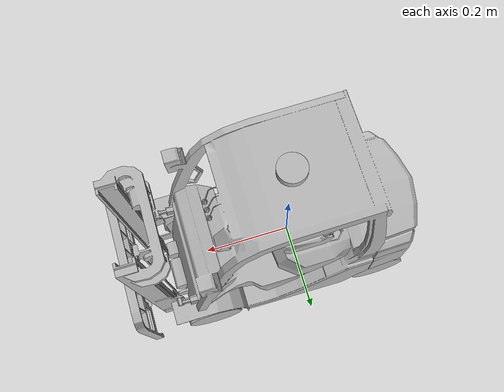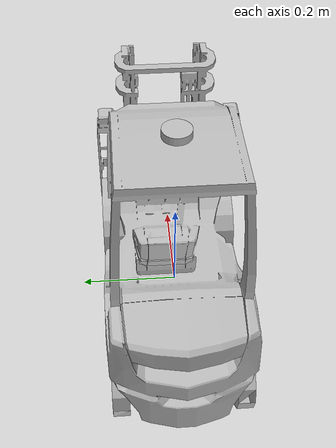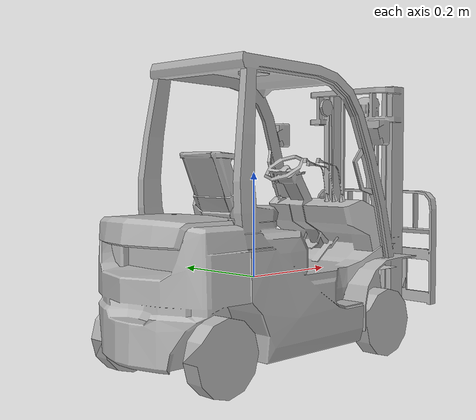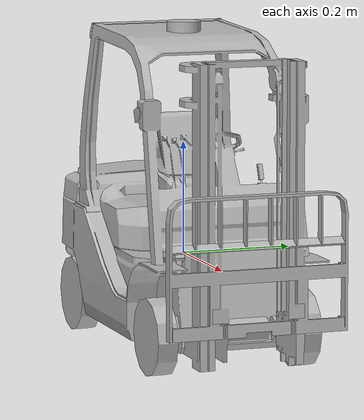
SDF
<sdf version='1.11'>
  <model name='forklift'>
    <link name='base_link'>
      <inertial>
        <pose>-0.099999800000399999 0 -2.9999940000120001e-07 0 0 0</pose>
        <mass>50.000100000000003</mass>
        <inertia>
          <ixx>1.5017689166621671</ixx>
          <ixy>0</ixy>
          <ixz>1.4999970000059999e-06</ixz>
          <iyy>3.0534365833268331</iyy>
          <iyz>0</iyz>
          <izz>2.3017676666646669</izz>
        </inertia>
      </inertial>
      <collision name='base_link_collision'>
        <pose>0.042000000000000003 0 0.14000000000000001 0 0 0</pose>
        <geometry>
          <box>
            <size>0.68000000000000005 0.29999999999999999 0.52000000000000002</size>
          </box>
        </geometry>
      </collision>
      <visual name='base_link_visual'>
        <pose>0 0 0 0 0 0</pose>
        <geometry>
          <mesh>
            <scale>0.0027000000000000001 0.0027000000000000001 0.0027000000000000001</scale>
            <uri>/home/elmeripk/forklift_sim/install/forklift_controller/share/forklift_controller/models/forklift/meshes/body.dae</uri>
          </mesh>
        </geometry>
      </visual>
      <visual name='base_link_fixed_joint_lump__base_footprint_visual_1'>
        <pose>0 0 -0.14999999999999999 0 0 0</pose>
        <geometry>
          <box>
            <size>0.001 0.001 0.001</size>
          </box>
        </geometry>
      </visual>
    </link>
    <joint name='fork_plate_joint' type='revolute'>
      <pose relative_to='base_link'>0.375 0 0.050000000000000003 0 0 0</pose>
      <parent>base_link</parent>
      <child>fork_plate</child>
      <axis>
        <limit>
          <lower>0</lower>
          <upper>0</upper>
        </limit>
        <dynamics>
          <damping>0</damping>
          <friction>0</friction>
          <spring_reference>0</spring_reference>
          <spring_stiffness>0</spring_stiffness>
        </dynamics>
        <xyz>0 0 1</xyz>
      </axis>
      <physics>
        <ode>
          <limit>
            <cfm>0</cfm>
            <erp>0.20000000000000001</erp>
          </limit>
        </ode>
      </physics>
    </joint>
    <link name='fork_plate'>
      <pose relative_to='fork_plate_joint'>0 0 0 0 0 0</pose>
      <inertial>
        <pose>0 0 0 0 0 0</pose>
        <mass>50</mass>
        <inertia>
          <ixx>0.54166666666666663</ixx>
          <ixy>0</ixy>
          <ixz>0</ixz>
          <iyy>0.16708333333333339</iyy>
          <iyz>0</iyz>
          <izz>0.37541666666666662</izz>
        </inertia>
      </inertial>
      <collision name='fork_plate_collision'>
        <pose>0 0 0 0 0 0</pose>
        <geometry>
          <box>
            <size>0.01 0.29999999999999999 0.20000000000000001</size>
          </box>
        </geometry>
        <surface>
          <contact>
            <ode/>
          </contact>
          <friction>
            <ode/>
          </friction>
        </surface>
      </collision>
      <visual name='fork_plate_visual'>
        <pose>0 0 0 0 0 0</pose>
        <geometry>
          <mesh>
            <scale>0.0027000000000000001 0.0027000000000000001 0.0027000000000000001</scale>
            <uri>/home/elmeripk/forklift_sim/install/forklift_controller/share/forklift_controller/models/forklift/meshes/fork_plate.dae</uri>
          </mesh>
        </geometry>
      </visual>
      <sensor name='sensor_contact' type='contact'>
        <contact>
          <collision>fork_plate_fixed_joint_lump__fork_1_collision_1</collision>
          <topic>__default_topic__</topic>
        </contact>
      </sensor>
    </link>
    <joint name='left_wheel_back_joint' type='revolute'>
      <pose relative_to='base_link'>-0.20000000000000001 0.13 -0.10000000000000001 -1.5707963267948959 0 0</pose>
      <parent>base_link</parent>
      <child>left_wheel_back</child>
      <axis>
        <xyz>0 0 1</xyz>
        <limit>
          <lower>-inf</lower>
          <upper>inf</upper>
        </limit>
        <dynamics>
          <spring_reference>0</spring_reference>
          <spring_stiffness>0</spring_stiffness>
        </dynamics>
      </axis>
    </joint>
    <link name='left_wheel_back'>
      <pose relative_to='left_wheel_back_joint'>0 0 0 0 0 0</pose>
      <inertial>
        <pose>0 0 0 0 0 0</pose>
        <mass>5</mass>
        <inertia>
          <ixx>0.0081666666666666658</ixx>
          <ixy>0</ixy>
          <ixz>0</ixz>
          <iyy>0.0081666666666666658</iyy>
          <iyz>0</iyz>
          <izz>0.016</izz>
        </inertia>
      </inertial>
      <collision name='left_wheel_back_collision'>
        <pose>0 0 0 0 0 0</pose>
        <geometry>
          <cylinder>
            <length>0.02</length>
            <radius>0.080000000000000002</radius>
          </cylinder>
        </geometry>
        <surface>
          <contact>
            <ode/>
          </contact>
          <friction>
            <ode/>
          </friction>
        </surface>
      </collision>
      <visual name='left_wheel_back_visual'>
        <pose>0 0 0 -1.5707963267948959 0 0</pose>
        <geometry>
          <mesh>
            <scale>0.002 0.002 0.002</scale>
            <uri>/home/elmeripk/forklift_sim/install/forklift_controller/share/forklift_controller/models/forklift/meshes/front_wheel_right.dae</uri>
          </mesh>
        </geometry>
      </visual>
      <friction>
        <ode>
          <mu>1.01</mu>
          <mu2>1.01</mu2>
          <fdir1>0 0 1</fdir1>
          <slip1>0</slip1>
          <slip2>0</slip2>
        </ode>
      </friction>
      <bounce>
        <restitution_coefficient>0.0</restitution_coefficient>
        <threshold>100000.0</threshold>
      </bounce>
      <contact>
        <ode>
          <soft_cfm>0.0</soft_cfm>
          <soft_erp>0.2</soft_erp>
          <kp>100000.0</kp>
          <kd>1.0</kd>
          <max_vel>100.0</max_vel>
          <min_depth>0.001</min_depth>
        </ode>
      </contact>
    </link>
    <joint name='left_wheel_joint' type='revolute'>
      <pose relative_to='base_link'>0.23000000000000001 0.13 -0.10000000000000001 -1.5707963267948959 0 0</pose>
      <parent>base_link</parent>
      <child>left_wheel</child>
      <axis>
        <xyz>0 0 1</xyz>
        <limit>
          <lower>-inf</lower>
          <upper>inf</upper>
        </limit>
        <dynamics>
          <spring_reference>0</spring_reference>
          <spring_stiffness>0</spring_stiffness>
        </dynamics>
      </axis>
    </joint>
    <link name='left_wheel'>
      <pose relative_to='left_wheel_joint'>0 0 0 0 0 0</pose>
      <inertial>
        <pose>0 0 0 0 0 0</pose>
        <mass>5</mass>
        <inertia>
          <ixx>0.0081666666666666658</ixx>
          <ixy>0</ixy>
          <ixz>0</ixz>
          <iyy>0.0081666666666666658</iyy>
          <iyz>0</iyz>
          <izz>0.016</izz>
        </inertia>
      </inertial>
      <collision name='left_wheel_collision'>
        <pose>0 0 0 0 0 0</pose>
        <geometry>
          <cylinder>
            <length>0.02</length>
            <radius>0.080000000000000002</radius>
          </cylinder>
        </geometry>
        <surface>
          <contact>
            <ode/>
          </contact>
          <friction>
            <ode/>
          </friction>
        </surface>
      </collision>
      <visual name='left_wheel_visual'>
        <pose>0 0 0 -1.5707963267948959 0 0</pose>
        <geometry>
          <mesh>
            <scale>0.002 0.002 0.002</scale>
            <uri>/home/elmeripk/forklift_sim/install/forklift_controller/share/forklift_controller/models/forklift/meshes/front_wheel_right.dae</uri>
          </mesh>
        </geometry>
      </visual>
      <friction>
        <ode>
          <mu>1.01</mu>
          <mu2>1.01</mu2>
          <fdir1>0 0 1</fdir1>
          <slip1>0</slip1>
          <slip2>0</slip2>
        </ode>
      </friction>
      <bounce>
        <restitution_coefficient>0.0</restitution_coefficient>
        <threshold>100000.0</threshold>
      </bounce>
      <contact>
        <ode>
          <soft_cfm>0.0</soft_cfm>
          <soft_erp>0.2</soft_erp>
          <kp>100000.0</kp>
          <kd>1.0</kd>
          <max_vel>100.0</max_vel>
          <min_depth>0.001</min_depth>
        </ode>
      </contact>
    </link>
    <joint name='right_wheel_back_joint' type='revolute'>
      <pose relative_to='base_link'>-0.20000000000000001 -0.13 -0.10000000000000001 -1.5707963267948959 0 0</pose>
      <parent>base_link</parent>
      <child>right_wheel_back</child>
      <axis>
        <xyz>0 0 1</xyz>
        <limit>
          <lower>-inf</lower>
          <upper>inf</upper>
        </limit>
        <dynamics>
          <spring_reference>0</spring_reference>
          <spring_stiffness>0</spring_stiffness>
        </dynamics>
      </axis>
    </joint>
    <link name='right_wheel_back'>
      <pose relative_to='right_wheel_back_joint'>0 0 0 0 0 0</pose>
      <inertial>
        <pose>0 0 0 0 0 0</pose>
        <mass>5</mass>
        <inertia>
          <ixx>0.0081666666666666658</ixx>
          <ixy>0</ixy>
          <ixz>0</ixz>
          <iyy>0.0081666666666666658</iyy>
          <iyz>0</iyz>
          <izz>0.016</izz>
        </inertia>
      </inertial>
      <collision name='right_wheel_back_collision'>
        <pose>0 0 0 0 0 0</pose>
        <geometry>
          <cylinder>
            <length>0.02</length>
            <radius>0.080000000000000002</radius>
          </cylinder>
        </geometry>
        <surface>
          <contact>
            <ode/>
          </contact>
          <friction>
            <ode/>
          </friction>
        </surface>
      </collision>
      <visual name='right_wheel_back_visual'>
        <pose>0 0 0 1.5707963267948959 0 0</pose>
        <geometry>
          <mesh>
            <scale>0.002 0.002 0.002</scale>
            <uri>/home/elmeripk/forklift_sim/install/forklift_controller/share/forklift_controller/models/forklift/meshes/front_wheel_right.dae</uri>
          </mesh>
        </geometry>
      </visual>
      <friction>
        <ode>
          <mu>1.01</mu>
          <mu2>1.01</mu2>
          <fdir1>0 0 1</fdir1>
          <slip1>0</slip1>
          <slip2>0</slip2>
        </ode>
      </friction>
      <bounce>
        <restitution_coefficient>0.0</restitution_coefficient>
        <threshold>100000.0</threshold>
      </bounce>
      <contact>
        <ode>
          <soft_cfm>0.0</soft_cfm>
          <soft_erp>0.2</soft_erp>
          <kp>100000.0</kp>
          <kd>1.0</kd>
          <max_vel>100.0</max_vel>
          <min_depth>0.001</min_depth>
        </ode>
      </contact>
    </link>
    <joint name='right_wheel_joint' type='revolute'>
      <pose relative_to='base_link'>0.23000000000000001 -0.13 -0.10000000000000001 -1.5707963267948959 0 0</pose>
      <parent>base_link</parent>
      <child>right_wheel</child>
      <axis>
        <xyz>0 0 1</xyz>
        <limit>
          <lower>-inf</lower>
          <upper>inf</upper>
        </limit>
        <dynamics>
          <spring_reference>0</spring_reference>
          <spring_stiffness>0</spring_stiffness>
        </dynamics>
      </axis>
    </joint>
    <link name='right_wheel'>
      <pose relative_to='right_wheel_joint'>0 0 0 0 0 0</pose>
      <inertial>
        <pose>0 0 0 0 0 0</pose>
        <mass>5</mass>
        <inertia>
          <ixx>0.0081666666666666658</ixx>
          <ixy>0</ixy>
          <ixz>0</ixz>
          <iyy>0.0081666666666666658</iyy>
          <iyz>0</iyz>
          <izz>0.016</izz>
        </inertia>
      </inertial>
      <collision name='right_wheel_collision'>
        <pose>0 0 0 0 0 0</pose>
        <geometry>
          <cylinder>
            <length>0.02</length>
            <radius>0.080000000000000002</radius>
          </cylinder>
        </geometry>
        <surface>
          <contact>
            <ode/>
          </contact>
          <friction>
            <ode/>
          </friction>
        </surface>
      </collision>
      <visual name='right_wheel_visual'>
        <pose>0 0 0 1.5707963267948959 0 0</pose>
        <geometry>
          <mesh>
            <scale>0.002 0.002 0.002</scale>
            <uri>/home/elmeripk/forklift_sim/install/forklift_controller/share/forklift_controller/models/forklift/meshes/front_wheel_right.dae</uri>
          </mesh>
        </geometry>
      </visual>
      <friction>
        <ode>
          <mu>1.01</mu>
          <mu2>1.01</mu2>
          <fdir1>0 0 1</fdir1>
          <slip1>0</slip1>
          <slip2>0</slip2>
        </ode>
      </friction>
      <bounce>
        <restitution_coefficient>0.0</restitution_coefficient>
        <threshold>100000.0</threshold>
      </bounce>
      <contact>
        <ode>
          <soft_cfm>0.0</soft_cfm>
          <soft_erp>0.2</soft_erp>
          <kp>100000.0</kp>
          <kd>1.0</kd>
          <max_vel>100.0</max_vel>
          <min_depth>0.001</min_depth>
        </ode>
      </contact>
    </link>
    <joint name='rplidar_joint' type='fixed'>
      <pose relative_to='base_link'>0 0 0.40000000000000002 0 0 0</pose>
      <parent>base_link</parent>
      <child>rplidar_link</child>
      <axis>
        <dynamics>
          <spring_reference>0</spring_reference>
          <spring_stiffness>0</spring_stiffness>
        </dynamics>
        <xyz>0 0 1</xyz>
        <limit>
          <lower>-inf</lower>
          <upper>inf</upper>
        </limit>
      </axis>
      <physics>
        <ode>
          <limit>
            <cfm>0</cfm>
            <erp>0.20000000000000001</erp>
          </limit>
        </ode>
      </physics>
    </joint>
    <link name='rplidar_link'>
      <pose relative_to='rplidar_joint'>0 0 0 0 0 0</pose>
      <inertial>
        <pose>0 0 0 0 0 0</pose>
        <mass>0.10000000000000001</mass>
        <inertia>
          <ixx>3.0000000000000001e-05</ixx>
          <ixy>0</ixy>
          <ixz>0</ixz>
          <iyy>3.0000000000000001e-05</iyy>
          <iyz>0</iyz>
          <izz>4.5000000000000003e-05</izz>
        </inertia>
      </inertial>
      <collision name='rplidar_link_collision'>
        <pose>0 0 0 0 0 0</pose>
        <geometry>
          <cylinder>
            <length>0.029999999999999999</length>
            <radius>0.029999999999999999</radius>
          </cylinder>
        </geometry>
        <surface>
          <contact>
            <ode/>
          </contact>
          <friction>
            <ode/>
          </friction>
        </surface>
      </collision>
      <visual name='rplidar_link_visual'>
        <pose>0 0 0 0 0 0</pose>
        <geometry>
          <cylinder>
            <length>0.029999999999999999</length>
            <radius>0.029999999999999999</radius>
          </cylinder>
        </geometry>
      </visual>
      <sensor name='rplidar' type='gpu_lidar'>
        <update_rate>10</update_rate>
        <visualize>true</visualize>
        <always_on>true</always_on>
        <topic>/scan</topic>
        <lidar>
          <scan>
            <horizontal>
              <samples>360</samples>
              <resolution>1</resolution>
              <min_angle>0</min_angle>
              <max_angle>6.2800000000000002</max_angle>
            </horizontal>
          </scan>
          <range>
            <min>0.16400000000000001</min>
            <max>20</max>
            <resolution>0.01</resolution>
          </range>
        </lidar>
        <plugin name='dummy' filename='dummyfile'/>
        <gz_frame_id>rplidar_link</gz_frame_id>
      </sensor>
    </link>
    <plugin name='gz::sim::systems::TouchPlugin' filename='gz-sim-touchplugin-system'>
      <target>cube</target>
      <time>0.001</time>
      <enabled>true</enabled>
      <namespace/>
    </plugin>
    <plugin name='gz::sim::systems::DiffDrive' filename='gz-sim-diff-drive-system'>
      <left_joint>left_wheel_joint</left_joint>
      <left_joint>left_wheel_back_joint</left_joint>
      <right_joint>right_wheel_joint</right_joint>
      <right_joint>right_wheel_back_joint</right_joint>
      <wheel_separation>0.26</wheel_separation>
      <wheel_radius>0.07</wheel_radius>
      <odom_publish_frequency>30</odom_publish_frequency>
      <odom_topic>/odom</odom_topic>
      <frame_id>odom</frame_id>
      <tf_topic>/tf</tf_topic>
      <topic>/cmd_vel</topic>
      <child_frame_id>base_link</child_frame_id>
      <max_linear_acceleration>10</max_linear_acceleration>
      <min_linear_acceleration>-10</min_linear_acceleration>
      <max_angular_acceleration>20</max_angular_acceleration>
      <min_angular_acceleration>-20</min_angular_acceleration>
      <max_linear_velocity>0.5</max_linear_velocity>
      <min_linear_velocity>-0.5</min_linear_velocity>
      <max_angular_velocity>10</max_angular_velocity>
      <min_angular_velocity>-10</min_angular_velocity>
    </plugin>
    <plugin name='gz::sim::systems::JointStatePublisher' filename='gz-sim-joint-state-publisher-system'>
      <joint_name>left_wheel_joint</joint_name>
      <joint_name>right_wheel_joint</joint_name>
      <joint_name>left_wheel_back_joint</joint_name>
      <joint_name>right_wheel_back_joint</joint_name>
      <topic>/joint_states</topic>
    </plugin>
    <frame name='base_link_joint' attached_to='base_link'>
      <pose>0 0 -0.14999999999999999 0 0 0</pose>
    </frame>
    <frame name='base_footprint' attached_to='base_link_joint'>
      <pose>0 0 0 0 0 0</pose>
    </frame>
  </model>
</sdf>
